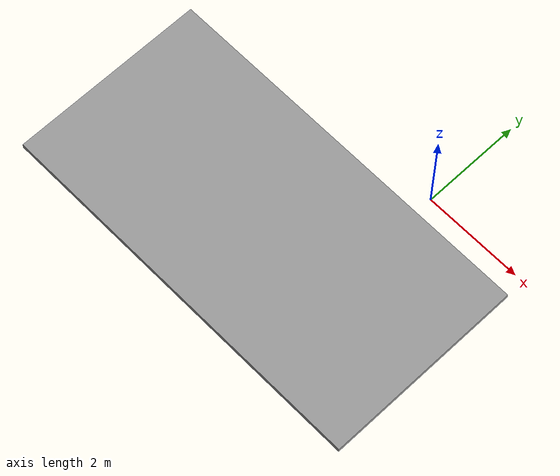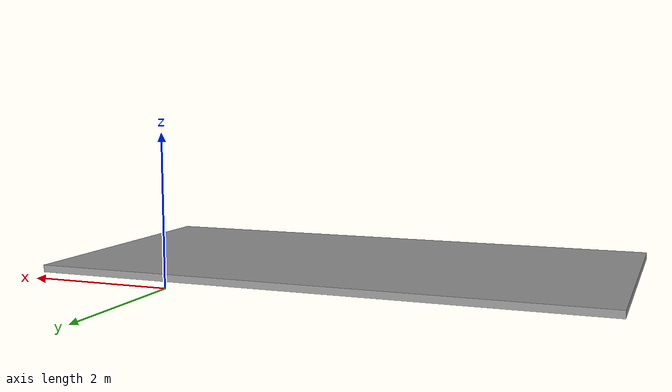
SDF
<?xml version='1.0'?>
<sdf version='1.6'>
  <model name='road4'>
    <pose frame=''>-1.735 -2.2 0 0 -0 0</pose>
    <link name='Wall_0'>
      <collision name='Wall_0_Collision'>
        <geometry>
          <box>
            <size>7.85 4 0.1</size>
          </box>
        </geometry>
        <pose frame=''>0 0 0.05 0 -0 0</pose>
      </collision>
      <visual name='Wall_0_Visual'>
        <pose frame=''>0 0 0.05 0 -0 0</pose>
        <geometry>
          <box>
            <size>7.85 4 0.1</size>
          </box>
        </geometry>
        <material>
          <script>
            <uri>file://media/materials/scripts/gazebo.material</uri>
            <name>Gazebo/Grey</name>
          </script>
          <ambient>1 1 1 1</ambient>
        </material>
        <meta>
          <layer>0</layer>
        </meta>
      </visual>
      <pose frame=''>-0 -0.2 0 0 -0 3.14159</pose>
    </link>
    <static>1</static>
  </model>
</sdf>
